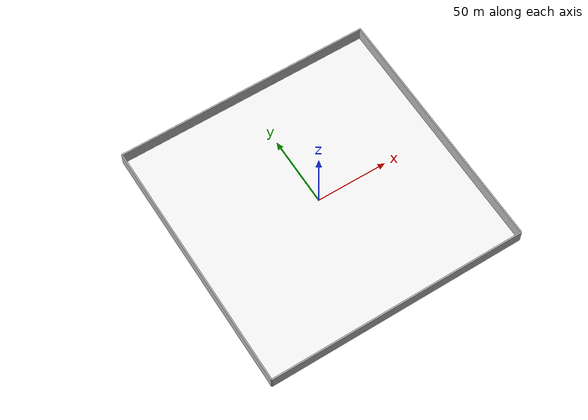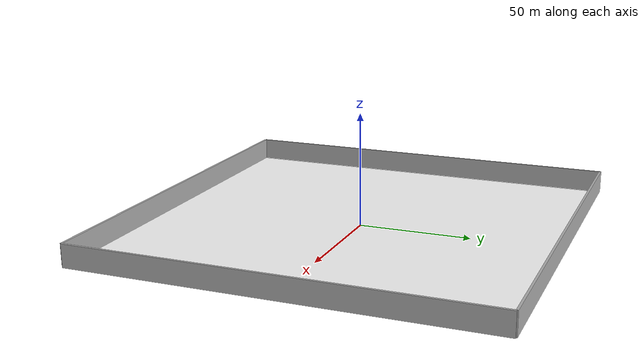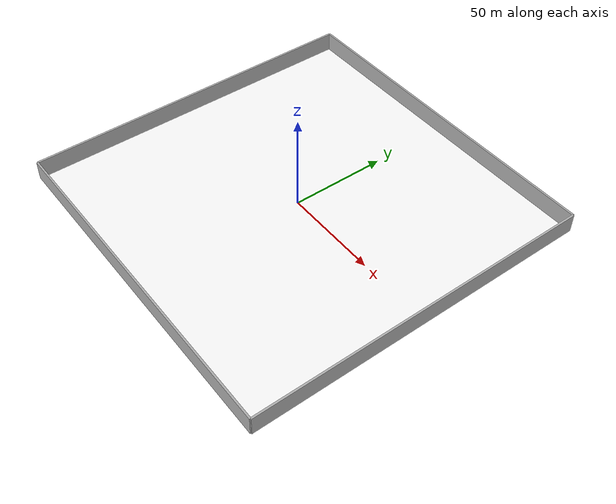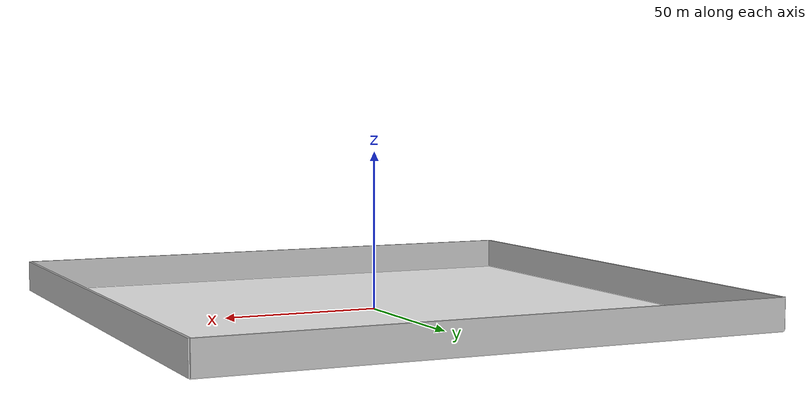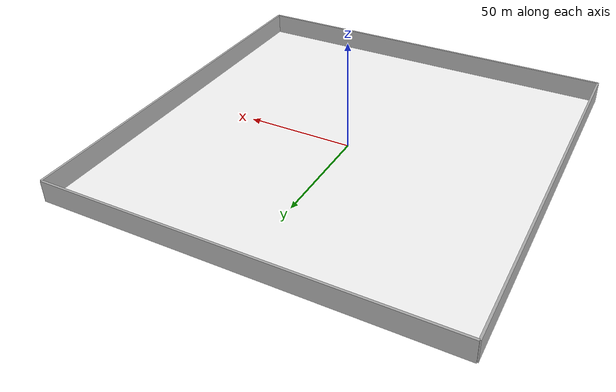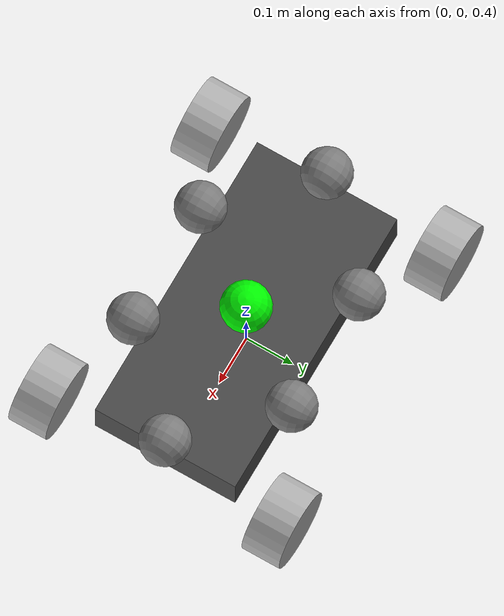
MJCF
<mujoco model="TurboV1">

  <compiler meshdir="/Users/venky/Documents/Projects/DRL_TurboEngine/DRLTurboEngines/DRL_TurboEngine_V1/Tracks_STL/Track_V1"/>
  <compiler angle="degree" coordinate="local"/>
  <option timestep="0.01"/>

  <default>
    <joint armature="0.01" damping="1" limited="true"/>
  </default>

  <worldbody>
    <geom name="ground Plane" type="plane" pos="0 0 0" size="90 90 1" rgba="1 1 1 1"/>
    <geom name="wall_boundary1" type="box" pos="90 0 5" size="0.5 90 5" rgba="0.7 0.7 0.7 1" contype="1" conaffinity="1"/>
    <geom name="wall_boundary2" type="box" pos="-90 0 5" size="0.5 90 5" rgba="0.7 0.7 0.7 1" contype="1" conaffinity="1"/>
    <geom name="wall_boundary3" type="box" pos="0 -90 5" size="90 0.5 5" rgba="0.7 0.7 0.7 1" contype="1" conaffinity="1"/>
    <geom name="wall_boundary4" type="box" pos="0 90 5" size="90 0.5 5" rgba="0.7 0.7 0.7 1" contype="1" conaffinity="1"/>

    <body name="chassis" pos="0 0 0.5">
      <geom name="chassis_geom" type="box" size="0.3 0.15 0.05" rgba="0.3 0.3 0.3 1" mass="100" contype="1" conaffinity="1"/>
      <inertial pos="0.1 0 0.05" mass="100" diaginertia="100 100 100"/>
      <joint name="chassis_free" type="free"/>

      <site name="ray_site_front" pos="0.3 0 0.1" quat="0.7071 0 -0.7071 0" type="sphere" size="0.05"/>
      <site name="ray_site_right1" pos="0.125 0.17 0.1" quat="0.7071 0.7071 0 0" type="sphere" size="0.05"/>
      <site name="ray_site_right2" pos="-0.125 0.17 0.1" quat="0.7071 0.7071 0 0" type="sphere" size="0.05"/>
      <site name="ray_site_back" pos="-0.3 0 0.1" quat="0 -0.7071 0 -0.7071" type="sphere" size="0.05"/>
      <site name="ray_site_left1" pos="0.125 -0.17 0.1" quat="0.7071 -0.7071 0 0" type="sphere" size="0.05"/>
      <site name="ray_site_left2" pos="-0.125 -0.17 0.1" quat="0.7071 -0.7071 0 0" type="sphere" size="0.05"/>
      <site name="imu_site" pos="0 0 0.1" size="0.05" rgba="0 1 0 1"/>

      <body name="rear_left" pos="0.3 -0.25 0" euler="90 0 0">
        <joint name="rear_left_axle" type="hinge" axis="0 0 1" limited="false"/>
        <geom name="rear_left_wheel" type="cylinder" size="0.08 0.04"
              rgba="0.7 0.7 0.7 1" mass="20"
              friction="1.2 0.05 0.002" contype="1" conaffinity="1"/>
      </body>

      <body name="rear_right" pos="0.3 0.25 0" euler="90 0 0">
        <joint name="rear_right_axle" type="hinge" axis="0 0 1" limited="false"/>
        <geom name="rear_right_wheel" type="cylinder" size="0.08 0.04"
              rgba="0.7 0.7 0.7 1" mass="20"
              friction="1.2 0.05 0.002" contype="1" conaffinity="1"/>
      </body>

      <body name="front_left_mount" pos="-0.3 -0.25 0" euler="0 90 0">
        <inertial pos="0 0 0" mass="0.001" diaginertia="0.001 0.001 0.001"/>
        <joint name="front_left_steer" type="hinge" axis="1 0 0" limited="true" range="-30 30"/>
        <body name="front_left" pos="0 0 0" euler="90 0 0">
          <joint name="front_left_axle" type="hinge" axis="0 0 1" limited="false"/>
          <geom name="front_left_wheel" type="cylinder" size="0.08 0.04"
                rgba="0.7 0.7 0.7 1" mass="20"
                friction="1.0 0.1 0.01" contype="1" conaffinity="1"/>
        </body>
      </body>

      <body name="front_right_mount" pos="-0.3 0.25 0" euler="0 90 0">
        <inertial pos="0 0 0" mass="0.001" diaginertia="0.001 0.001 0.001"/>
        <joint name="front_right_steer" type="hinge" axis="1 0 0" limited="true" range="-30 30"/>
        <body name="front_right" pos="0 0 0" euler="90 0 0">
          <joint name="front_right_axle" type="hinge" axis="0 0 1" limited="false"/>
          <geom name="front_right_wheel" type="cylinder" size="0.08 0.04"
                rgba="0.7 0.7 0.7 1" mass="20"
                friction="1.0 0.1 0.01" contype="1" conaffinity="1"/>
        </body>
      </body>
    </body>
  </worldbody>

  <tendon>
      <fixed name="rear_axles">
        <joint joint="rear_left_axle" coef="1"/>
        <joint joint="rear_right_axle" coef="1"/>
      </fixed>

      <fixed name="front_steer">
        <joint joint="front_left_steer" coef="1"/>
        <joint joint="front_right_steer" coef="1"/>
      </fixed>
   </tendon>

  <actuator>
    <motor name="rear_drive" tendon="rear_axles" gear="25" ctrlrange="0 1"/>
    <position name="front_steer_ctrl" tendon="front_steer" kp="100" ctrlrange="-1 1"/>
  </actuator>

  <sensor>
    <rangefinder name="lidar_front" site="ray_site_front" cutoff="5"/>
    <rangefinder name="lidar_right1" site="ray_site_right1" cutoff="5"/>
    <rangefinder name="lidar_right2" site="ray_site_right2" cutoff="5"/>
    <rangefinder name="lidar_back" site="ray_site_back" cutoff="5"/>
    <rangefinder name="lidar_left1" site="ray_site_left1" cutoff="5"/>
    <rangefinder name="lidar_left2" site="ray_site_left2" cutoff="5"/>
    <velocimeter name="imu_velocity" site="imu_site"/>
    <accelerometer name="imu_acceleration" site="imu_site"/>
  </sensor>
</mujoco>
